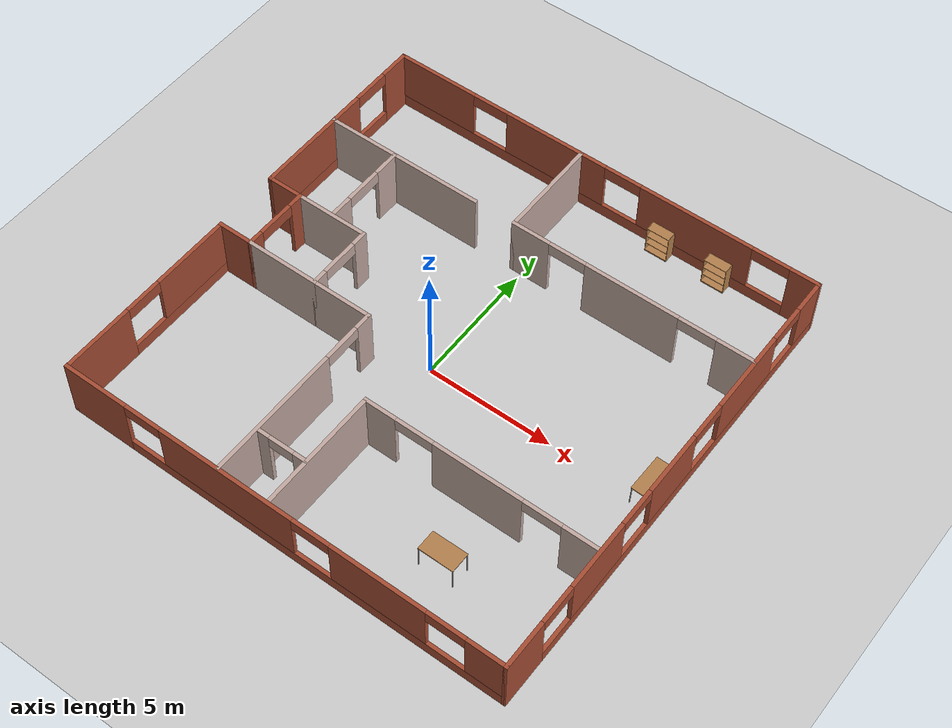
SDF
<sdf version="1.6">
 <world name="default">
  <light name="sun" type="directional">
   <pose>0 0 10 0 -0 0</pose>
   <diffuse>0.8 0.8 0.8 1</diffuse>
   <specular>0.2 0.2 0.2 1</specular>
   <attenuation>
    <range>1000</range>
    <constant>0.9</constant>
    <linear>0.01</linear>
    <quadratic>0.001</quadratic>
   </attenuation>
   <direction>-0.5 0.1 -0.9</direction>
  </light>
  <model name="ground_plane">
   <static>1</static>
   <link name="link">
    <collision name="collision">
     <geometry><plane><normal>0 0 1</normal><size>100 100</size></plane></geometry>
     <surface><friction><ode><mu>100</mu><mu2>50</mu2></ode></friction></surface>
    </collision>
    <visual name="visual">
     <cast_shadows>0</cast_shadows>
     <geometry><plane><normal>0 0 1</normal><size>100 100</size></plane></geometry>
     <material>
      <script><uri>file://media/materials/scripts/gazebo.material</uri><name>Gazebo/Grey</name></script>
     </material>
    </visual>
   </link>
  </model>
  <gravity>0 0 -9.8</gravity>
  <magnetic_field>6e-06 2.3e-05 -4.2e-05</magnetic_field>
  <atmosphere type="adiabatic"/>
  <physics name="default_physics" default="0" type="ode">
   <max_step_size>0.001</max_step_size>
   <real_time_factor>1</real_time_factor>
   <real_time_update_rate>1000</real_time_update_rate>
  </physics>
  <scene><ambient>0.4 0.4 0.4 1</ambient><background>0.7 0.7 0.7 1</background><shadows>1</shadows></scene>
  <audio><device>default</device></audio>
  <spherical_coordinates>
   <surface_model>EARTH_WGS84</surface_model>
   <latitude_deg>0</latitude_deg>
   <longitude_deg>0</longitude_deg>
   <elevation>0</elevation>
   <heading_deg>0</heading_deg>
  </spherical_coordinates>
  <model name="local_floorplan">
   <pose>0.442289 0.453295 0 0 -0 0</pose>
   <link name="Wall_104">
    <collision name="Wall_104_Collision">
     <geometry><box><size>6.5 0.15 2.5</size></box></geometry>
     <pose>0 0 1.25 0 -0 0</pose>
    </collision>
    <visual name="Wall_104_Visual">
     <pose>0 0 1.25 0 -0 0</pose>
     <geometry><box><size>6.5 0.15 2.5</size></box></geometry>
     <material>
      <script><uri>file://media/materials/scripts/gazebo.material</uri><name>Gazebo/Grey</name></script>
      <ambient>0.760784 0.662745 0.627451 1</ambient>
     </material>
     <meta><layer>0</layer></meta>
    </visual>
    <pose>-5.73 4.845 0 0 -0 0</pose>
   </link>
   <link name="Wall_106">
    <collision name="Wall_106_Collision">
     <geometry><box><size>4.15 0.15 2.5</size></box></geometry>
     <pose>0 0 1.25 0 -0 0</pose>
    </collision>
    <visual name="Wall_106_Visual">
     <pose>0 0 1.25 0 -0 0</pose>
     <geometry><box><size>4.15 0.15 2.5</size></box></geometry>
     <material>
      <script><uri>file://media/materials/scripts/gazebo.material</uri><name>Gazebo/Grey</name></script>
      <ambient>0.760784 0.662745 0.627451 1</ambient>
     </material>
     <meta><layer>0</layer></meta>
    </visual>
    <pose>-0.865 6.875 0 0 -0 1.5708</pose>
   </link>
   <link name="Wall_108">
    <pose>-6.125 3.15 0 0 -0 -1.5708</pose>
    <visual name="Wall_108_Visual_0">
     <pose>-1.1925 0 1.25 0 -0 0</pose>
     <geometry><box><size>1.115 0.15 2.5</size></box></geometry>
     <material>
      <script><uri>file://media/materials/scripts/gazebo.material</uri><name>Gazebo/Grey</name></script>
      <ambient>0.760784 0.662745 0.627451 1</ambient>
     </material>
     <meta><layer>0</layer></meta>
    </visual>
    <collision name="Wall_108_Collision_0">
     <geometry><box><size>1.115 0.15 2.5</size></box></geometry>
     <pose>-1.1925 0 1.25 0 -0 0</pose>
    </collision>
    <visual name="Wall_108_Visual_1">
     <pose>1.3075 0 1.25 0 -0 0</pose>
     <geometry><box><size>0.885 0.15 2.5</size></box></geometry>
     <material>
      <script><uri>file://media/materials/scripts/gazebo.material</uri><name>Gazebo/Grey</name></script>
      <ambient>0.760784 0.662745 0.627451 1</ambient>
     </material>
     <meta><layer>0</layer></meta>
    </visual>
    <collision name="Wall_108_Collision_1">
     <geometry><box><size>0.885 0.15 2.5</size></box></geometry>
     <pose>1.3075 0 1.25 0 -0 0</pose>
    </collision>
    <visual name="Wall_108_Visual_2">
     <pose>0.115 0 2.25 0 -0 0</pose>
     <geometry><box><size>1.5 0.15 0.5</size></box></geometry>
     <material>
      <script><uri>file://media/materials/scripts/gazebo.material</uri><name>Gazebo/Grey</name></script>
      <ambient>0.760784 0.662745 0.627451 1</ambient>
     </material>
     <meta><layer>0</layer></meta>
    </visual>
    <collision name="Wall_108_Collision_2">
     <geometry><box><size>1.5 0.15 0.5</size></box></geometry>
     <pose>0.115 0 2.25 0 -0 0</pose>
    </collision>
   </link>
   <link name="Wall_110">
    <pose>4.01 4.875 0 0 -0 0</pose>
    <visual name="Wall_110_Visual_0">
     <pose>-4.1575 0 1.25 0 -0 0</pose>
     <geometry><box><size>1.585 0.15 2.5</size></box></geometry>
     <material>
      <script><uri>file://media/materials/scripts/gazebo.material</uri><name>Gazebo/Grey</name></script>
      <ambient>0.760784 0.662745 0.627451 1</ambient>
     </material>
     <meta><layer>0</layer></meta>
    </visual>
    <collision name="Wall_110_Collision_0">
     <geometry><box><size>1.585 0.15 2.5</size></box></geometry>
     <pose>-4.1575 0 1.25 0 -0 0</pose>
    </collision>
    <visual name="Wall_110_Visual_1">
     <pose>0.025 0 1.25 0 -0 0</pose>
     <geometry><box><size>3.78 0.15 2.5</size></box></geometry>
     <material>
      <script><uri>file://media/materials/scripts/gazebo.material</uri><name>Gazebo/Grey</name></script>
      <ambient>0.760784 0.662745 0.627451 1</ambient>
     </material>
     <meta><layer>0</layer></meta>
    </visual>
    <collision name="Wall_110_Collision_1">
     <geometry><box><size>3.78 0.15 2.5</size></box></geometry>
     <pose>0.025 0 1.25 0 -0 0</pose>
    </collision>
    <visual name="Wall_110_Visual_2">
     <pose>4.1825 0 1.25 0 -0 0</pose>
     <geometry><box><size>1.535 0.15 2.5</size></box></geometry>
     <material>
      <script><uri>file://media/materials/scripts/gazebo.material</uri><name>Gazebo/Grey</name></script>
      <ambient>0.760784 0.662745 0.627451 1</ambient>
     </material>
     <meta><layer>0</layer></meta>
    </visual>
    <collision name="Wall_110_Collision_2">
     <geometry><box><size>1.535 0.15 2.5</size></box></geometry>
     <pose>4.1825 0 1.25 0 -0 0</pose>
    </collision>
    <visual name="Wall_110_Visual_3">
     <pose>-2.615 0 2.25 0 -0 0</pose>
     <geometry><box><size>1.5 0.15 0.5</size></box></geometry>
     <material>
      <script><uri>file://media/materials/scripts/gazebo.material</uri><name>Gazebo/Grey</name></script>
      <ambient>0.760784 0.662745 0.627451 1</ambient>
     </material>
     <meta><layer>0</layer></meta>
    </visual>
    <collision name="Wall_110_Collision_3">
     <geometry><box><size>1.5 0.15 0.5</size></box></geometry>
     <pose>-2.615 0 2.25 0 -0 0</pose>
    </collision>
    <visual name="Wall_110_Visual_4">
     <pose>2.665 0 2.25 0 -0 0</pose>
     <geometry><box><size>1.5 0.15 0.5</size></box></geometry>
     <material>
      <script><uri>file://media/materials/scripts/gazebo.material</uri><name>Gazebo/Grey</name></script>
      <ambient>0.760784 0.662745 0.627451 1</ambient>
     </material>
     <meta><layer>0</layer></meta>
    </visual>
    <collision name="Wall_110_Collision_4">
     <geometry><box><size>1.5 0.15 0.5</size></box></geometry>
     <pose>2.665 0 2.25 0 -0 0</pose>
    </collision>
   </link>
   <link name="Wall_69">
    <pose>-0 -8.925 0 0 -0 0</pose>
    <visual name="Wall_69_Visual_0">
     <pose>-7.6625 0 1.25 0 -0 0</pose>
     <geometry><box><size>2.675 0.15 2.5</size></box></geometry>
     <material>
      <script><uri>file://media/materials/scripts/gazebo.material</uri><name>Gazebo/Bricks</name></script>
      <ambient>1 1 1 1</ambient>
     </material>
     <meta><layer>0</layer></meta>
    </visual>
    <collision name="Wall_69_Collision_0">
     <geometry><box><size>2.675 0.15 2.5</size></box></geometry>
     <pose>-7.6625 0 1.25 0 -0 0</pose>
    </collision>
    <visual name="Wall_69_Visual_1">
     <pose>1.3375 0 0.25 0 -0 0</pose>
     <geometry><box><size>15.325 0.15 0.5</size></box></geometry>
     <material>
      <script><uri>file://media/materials/scripts/gazebo.material</uri><name>Gazebo/Bricks</name></script>
      <ambient>1 1 1 1</ambient>
     </material>
     <meta><layer>0</layer></meta>
    </visual>
    <collision name="Wall_69_Collision_1">
     <geometry><box><size>15.325 0.15 0.5</size></box></geometry>
     <pose>1.3375 0 0.25 0 -0 0</pose>
    </collision>
    <visual name="Wall_69_Visual_2">
     <pose>-2.065 0 1.5 0 -0 0</pose>
     <geometry><box><size>5.52 0.15 2</size></box></geometry>
     <material>
      <script><uri>file://media/materials/scripts/gazebo.material</uri><name>Gazebo/Bricks</name></script>
      <ambient>1 1 1 1</ambient>
     </material>
     <meta><layer>0</layer></meta>
    </visual>
    <collision name="Wall_69_Collision_2">
     <geometry><box><size>5.52 0.15 2</size></box></geometry>
     <pose>-2.065 0 1.5 0 -0 0</pose>
    </collision>
    <visual name="Wall_69_Visual_3">
     <pose>4.07 0 1.5 0 -0 0</pose>
     <geometry><box><size>3.75 0.15 2</size></box></geometry>
     <material>
      <script><uri>file://media/materials/scripts/gazebo.material</uri><name>Gazebo/Bricks</name></script>
      <ambient>1 1 1 1</ambient>
     </material>
     <meta><layer>0</layer></meta>
    </visual>
    <collision name="Wall_69_Collision_3">
     <geometry><box><size>3.75 0.15 2</size></box></geometry>
     <pose>4.07 0 1.5 0 -0 0</pose>
    </collision>
    <visual name="Wall_69_Visual_4">
     <pose>8.2225 0 1.5 0 -0 0</pose>
     <geometry><box><size>1.555 0.15 2</size></box></geometry>
     <material>
      <script><uri>file://media/materials/scripts/gazebo.material</uri><name>Gazebo/Bricks</name></script>
      <ambient>1 1 1 1</ambient>
     </material>
     <meta><layer>0</layer></meta>
    </visual>
    <collision name="Wall_69_Collision_4">
     <geometry><box><size>1.555 0.15 2</size></box></geometry>
     <pose>8.2225 0 1.5 0 -0 0</pose>
    </collision>
    <visual name="Wall_69_Visual_5">
     <pose>-5.575 0 2.25 0 -0 0</pose>
     <geometry><box><size>1.5 0.15 0.5</size></box></geometry>
     <material>
      <script><uri>file://media/materials/scripts/gazebo.material</uri><name>Gazebo/Bricks</name></script>
      <ambient>1 1 1 1</ambient>
     </material>
     <meta><layer>0</layer></meta>
    </visual>
    <collision name="Wall_69_Collision_5">
     <geometry><box><size>1.5 0.15 0.5</size></box></geometry>
     <pose>-5.575 0 2.25 0 -0 0</pose>
    </collision>
    <visual name="Wall_69_Visual_6">
     <pose>1.445 0 2.25 0 -0 0</pose>
     <geometry><box><size>1.5 0.15 0.5</size></box></geometry>
     <material>
      <script><uri>file://media/materials/scripts/gazebo.material</uri><name>Gazebo/Bricks</name></script>
      <ambient>1 1 1 1</ambient>
     </material>
     <meta><layer>0</layer></meta>
    </visual>
    <collision name="Wall_69_Collision_6">
     <geometry><box><size>1.5 0.15 0.5</size></box></geometry>
     <pose>1.445 0 2.25 0 -0 0</pose>
    </collision>
    <visual name="Wall_69_Visual_7">
     <pose>6.695 0 2.25 0 -0 0</pose>
     <geometry><box><size>1.5 0.15 0.5</size></box></geometry>
     <material>
      <script><uri>file://media/materials/scripts/gazebo.material</uri><name>Gazebo/Bricks</name></script>
      <ambient>1 1 1 1</ambient>
     </material>
     <meta><layer>0</layer></meta>
    </visual>
    <collision name="Wall_69_Collision_7">
     <geometry><box><size>1.5 0.15 0.5</size></box></geometry>
     <pose>6.695 0 2.25 0 -0 0</pose>
    </collision>
   </link>
   <link name="Wall_71">
    <pose>8.925 0 0 0 -0 1.5708</pose>
    <visual name="Wall_71_Visual_0">
     <pose>-8.0475 0 1.25 0 -0 0</pose>
     <geometry><box><size>1.905 0.15 2.5</size></box></geometry>
     <material>
      <script><uri>file://media/materials/scripts/gazebo.material</uri><name>Gazebo/Bricks</name></script>
      <ambient>1 1 1 1</ambient>
     </material>
     <meta><layer>0</layer></meta>
    </visual>
    <collision name="Wall_71_Collision_0">
     <geometry><box><size>1.905 0.15 2.5</size></box></geometry>
     <pose>-8.0475 0 1.25 0 -0 0</pose>
    </collision>
    <visual name="Wall_71_Visual_1">
     <pose>0.9525 0 0.25 0 -0 0</pose>
     <geometry><box><size>16.095 0.15 0.5</size></box></geometry>
     <material>
      <script><uri>file://media/materials/scripts/gazebo.material</uri><name>Gazebo/Bricks</name></script>
      <ambient>1 1 1 1</ambient>
     </material>
     <meta><layer>0</layer></meta>
    </visual>
    <collision name="Wall_71_Collision_1">
     <geometry><box><size>16.095 0.15 0.5</size></box></geometry>
     <pose>0.9525 0 0.25 0 -0 0</pose>
    </collision>
    <visual name="Wall_71_Visual_2">
     <pose>-4.21 0 1.5 0 -0 0</pose>
     <geometry><box><size>2.77 0.15 2</size></box></geometry>
     <material>
      <script><uri>file://media/materials/scripts/gazebo.material</uri><name>Gazebo/Bricks</name></script>
      <ambient>1 1 1 1</ambient>
     </material>
     <meta><layer>0</layer></meta>
    </visual>
    <collision name="Wall_71_Collision_2">
     <geometry><box><size>2.77 0.15 2</size></box></geometry>
     <pose>-4.21 0 1.5 0 -0 0</pose>
    </collision>
    <visual name="Wall_71_Visual_3">
     <pose>-0.055 0 1.5 0 -0 0</pose>
     <geometry><box><size>2.54 0.15 2</size></box></geometry>
     <material>
      <script><uri>file://media/materials/scripts/gazebo.material</uri><name>Gazebo/Bricks</name></script>
      <ambient>1 1 1 1</ambient>
     </material>
     <meta><layer>0</layer></meta>
    </visual>
    <collision name="Wall_71_Collision_3">
     <geometry><box><size>2.54 0.15 2</size></box></geometry>
     <pose>-0.055 0 1.5 0 -0 0</pose>
    </collision>
    <visual name="Wall_71_Visual_4">
     <pose>4.405 0 1.5 0 -0 0</pose>
     <geometry><box><size>3.38 0.15 2</size></box></geometry>
     <material>
      <script><uri>file://media/materials/scripts/gazebo.material</uri><name>Gazebo/Bricks</name></script>
      <ambient>1 1 1 1</ambient>
     </material>
     <meta><layer>0</layer></meta>
    </visual>
    <collision name="Wall_71_Collision_4">
     <geometry><box><size>3.38 0.15 2</size></box></geometry>
     <pose>4.405 0 1.5 0 -0 0</pose>
    </collision>
    <visual name="Wall_71_Visual_5">
     <pose>8.2975 0 1.5 0 -0 0</pose>
     <geometry><box><size>1.405 0.15 2</size></box></geometry>
     <material>
      <script><uri>file://media/materials/scripts/gazebo.material</uri><name>Gazebo/Bricks</name></script>
      <ambient>1 1 1 1</ambient>
     </material>
     <meta><layer>0</layer></meta>
    </visual>
    <collision name="Wall_71_Collision_5">
     <geometry><box><size>1.405 0.15 2</size></box></geometry>
     <pose>8.2975 0 1.5 0 -0 0</pose>
    </collision>
    <visual name="Wall_71_Visual_6">
     <pose>-6.345 0 2.25 0 -0 0</pose>
     <geometry><box><size>1.5 0.15 0.5</size></box></geometry>
     <material>
      <script><uri>file://media/materials/scripts/gazebo.material</uri><name>Gazebo/Bricks</name></script>
      <ambient>1 1 1 1</ambient>
     </material>
     <meta><layer>0</layer></meta>
    </visual>
    <collision name="Wall_71_Collision_6">
     <geometry><box><size>1.5 0.15 0.5</size></box></geometry>
     <pose>-6.345 0 2.25 0 -0 0</pose>
    </collision>
    <visual name="Wall_71_Visual_7">
     <pose>-2.075 0 2.25 0 -0 0</pose>
     <geometry><box><size>1.5 0.15 0.5</size></box></geometry>
     <material>
      <script><uri>file://media/materials/scripts/gazebo.material</uri><name>Gazebo/Bricks</name></script>
      <ambient>1 1 1 1</ambient>
     </material>
     <meta><layer>0</layer></meta>
    </visual>
    <collision name="Wall_71_Collision_7">
     <geometry><box><size>1.5 0.15 0.5</size></box></geometry>
     <pose>-2.075 0 2.25 0 -0 0</pose>
    </collision>
    <visual name="Wall_71_Visual_8">
     <pose>1.965 0 2.25 0 -0 0</pose>
     <geometry><box><size>1.5 0.15 0.5</size></box></geometry>
     <material>
      <script><uri>file://media/materials/scripts/gazebo.material</uri><name>Gazebo/Bricks</name></script>
      <ambient>1 1 1 1</ambient>
     </material>
     <meta><layer>0</layer></meta>
    </visual>
    <collision name="Wall_71_Collision_8">
     <geometry><box><size>1.5 0.15 0.5</size></box></geometry>
     <pose>1.965 0 2.25 0 -0 0</pose>
    </collision>
    <visual name="Wall_71_Visual_9">
     <pose>6.845 0 2.25 0 -0 0</pose>
     <geometry><box><size>1.5 0.15 0.5</size></box></geometry>
     <material>
      <script><uri>file://media/materials/scripts/gazebo.material</uri><name>Gazebo/Bricks</name></script>
      <ambient>1 1 1 1</ambient>
     </material>
     <meta><layer>0</layer></meta>
    </visual>
    <collision name="Wall_71_Collision_9">
     <geometry><box><size>1.5 0.15 0.5</size></box></geometry>
     <pose>6.845 0 2.25 0 -0 0</pose>
    </collision>
   </link>
   <link name="Wall_73">
    <pose>-0 8.925 0 0 -0 3.14159</pose>
    <visual name="Wall_73_Visual_0">
     <pose>-8.4075 0 1.25 0 -0 0</pose>
     <geometry><box><size>1.185 0.15 2.5</size></box></geometry>
     <material>
      <script><uri>file://media/materials/scripts/gazebo.material</uri><name>Gazebo/Bricks</name></script>
      <ambient>1 1 1 1</ambient>
     </material>
     <meta><layer>0</layer></meta>
    </visual>
    <collision name="Wall_73_Collision_0">
     <geometry><box><size>1.185 0.15 2.5</size></box></geometry>
     <pose>-8.4075 0 1.25 0 -0 0</pose>
    </collision>
    <visual name="Wall_73_Visual_1">
     <pose>0.5925 0 0.25 0 -0 0</pose>
     <geometry><box><size>16.815 0.15 0.5</size></box></geometry>
     <material>
      <script><uri>file://media/materials/scripts/gazebo.material</uri><name>Gazebo/Bricks</name></script>
      <ambient>1 1 1 1</ambient>
     </material>
     <meta><layer>0</layer></meta>
    </visual>
    <collision name="Wall_73_Collision_1">
     <geometry><box><size>16.815 0.15 0.5</size></box></geometry>
     <pose>0.5925 0 0.25 0 -0 0</pose>
    </collision>
    <visual name="Wall_73_Visual_2">
     <pose>-4.01 0 1.5 0 -0 0</pose>
     <geometry><box><size>4.61 0.15 2</size></box></geometry>
     <material>
      <script><uri>file://media/materials/scripts/gazebo.material</uri><name>Gazebo/Bricks</name></script>
      <ambient>1 1 1 1</ambient>
     </material>
     <meta><layer>0</layer></meta>
    </visual>
    <collision name="Wall_73_Collision_2">
     <geometry><box><size>4.61 0.15 2</size></box></geometry>
     <pose>-4.01 0 1.5 0 -0 0</pose>
    </collision>
    <visual name="Wall_73_Visual_3">
     <pose>1.95 0 1.5 0 -0 0</pose>
     <geometry><box><size>4.31 0.15 2</size></box></geometry>
     <material>
      <script><uri>file://media/materials/scripts/gazebo.material</uri><name>Gazebo/Bricks</name></script>
      <ambient>1 1 1 1</ambient>
     </material>
     <meta><layer>0</layer></meta>
    </visual>
    <collision name="Wall_73_Collision_3">
     <geometry><box><size>4.31 0.15 2</size></box></geometry>
     <pose>1.95 0 1.5 0 -0 0</pose>
    </collision>
    <visual name="Wall_73_Visual_4">
     <pose>7.3025 0 1.5 0 -0 0</pose>
     <geometry><box><size>3.395 0.15 2</size></box></geometry>
     <material>
      <script><uri>file://media/materials/scripts/gazebo.material</uri><name>Gazebo/Bricks</name></script>
      <ambient>1 1 1 1</ambient>
     </material>
     <meta><layer>0</layer></meta>
    </visual>
    <collision name="Wall_73_Collision_4">
     <geometry><box><size>3.395 0.15 2</size></box></geometry>
     <pose>7.3025 0 1.5 0 -0 0</pose>
    </collision>
    <visual name="Wall_73_Visual_5">
     <pose>-7.065 0 2.25 0 -0 0</pose>
     <geometry><box><size>1.5 0.15 0.5</size></box></geometry>
     <material>
      <script><uri>file://media/materials/scripts/gazebo.material</uri><name>Gazebo/Bricks</name></script>
      <ambient>1 1 1 1</ambient>
     </material>
     <meta><layer>0</layer></meta>
    </visual>
    <collision name="Wall_73_Collision_5">
     <geometry><box><size>1.5 0.15 0.5</size></box></geometry>
     <pose>-7.065 0 2.25 0 -0 0</pose>
    </collision>
    <visual name="Wall_73_Visual_6">
     <pose>-0.955 0 2.25 0 -0 0</pose>
     <geometry><box><size>1.5 0.15 0.5</size></box></geometry>
     <material>
      <script><uri>file://media/materials/scripts/gazebo.material</uri><name>Gazebo/Bricks</name></script>
      <ambient>1 1 1 1</ambient>
     </material>
     <meta><layer>0</layer></meta>
    </visual>
    <collision name="Wall_73_Collision_6">
     <geometry><box><size>1.5 0.15 0.5</size></box></geometry>
     <pose>-0.955 0 2.25 0 -0 0</pose>
    </collision>
    <visual name="Wall_73_Visual_7">
     <pose>4.855 0 2.25 0 -0 0</pose>
     <geometry><box><size>1.5 0.15 0.5</size></box></geometry>
     <material>
      <script><uri>file://media/materials/scripts/gazebo.material</uri><name>Gazebo/Bricks</name></script>
      <ambient>1 1 1 1</ambient>
     </material>
     <meta><layer>0</layer></meta>
    </visual>
    <collision name="Wall_73_Collision_7">
     <geometry><box><size>1.5 0.15 0.5</size></box></geometry>
     <pose>4.855 0 2.25 0 -0 0</pose>
    </collision>
   </link>
   <link name="Wall_75">
    <pose>-8.925 5.125 0 0 -0 -1.5708</pose>
    <visual name="Wall_75_Visual_0">
     <pose>-3.2275 0 1.25 0 -0 0</pose>
     <geometry><box><size>1.295 0.15 2.5</size></box></geometry>
     <material>
      <script><uri>file://media/materials/scripts/gazebo.material</uri><name>Gazebo/Bricks</name></script>
      <ambient>1 1 1 1</ambient>
     </material>
     <meta><layer>0</layer></meta>
    </visual>
    <collision name="Wall_75_Collision_0">
     <geometry><box><size>1.295 0.15 2.5</size></box></geometry>
     <pose>-3.2275 0 1.25 0 -0 0</pose>
    </collision>
    <visual name="Wall_75_Visual_1">
     <pose>0.6475 0 0.25 0 -0 0</pose>
     <geometry><box><size>6.455 0.15 0.5</size></box></geometry>
     <material>
      <script><uri>file://media/materials/scripts/gazebo.material</uri><name>Gazebo/Bricks</name></script>
      <ambient>1 1 1 1</ambient>
     </material>
     <meta><layer>0</layer></meta>
    </visual>
    <collision name="Wall_75_Collision_1">
     <geometry><box><size>6.455 0.15 0.5</size></box></geometry>
     <pose>0.6475 0 0.25 0 -0 0</pose>
    </collision>
    <visual name="Wall_75_Visual_2">
     <pose>1.3975 0 1.5 0 -0 0</pose>
     <geometry><box><size>4.955 0.15 2</size></box></geometry>
     <material>
      <script><uri>file://media/materials/scripts/gazebo.material</uri><name>Gazebo/Bricks</name></script>
      <ambient>1 1 1 1</ambient>
     </material>
     <meta><layer>0</layer></meta>
    </visual>
    <collision name="Wall_75_Collision_2">
     <geometry><box><size>4.955 0.15 2</size></box></geometry>
     <pose>1.3975 0 1.5 0 -0 0</pose>
    </collision>
    <visual name="Wall_75_Visual_3">
     <pose>-1.83 0 2.25 0 -0 0</pose>
     <geometry><box><size>1.5 0.15 0.5</size></box></geometry>
     <material>
      <script><uri>file://media/materials/scripts/gazebo.material</uri><name>Gazebo/Bricks</name></script>
      <ambient>1 1 1 1</ambient>
     </material>
     <meta><layer>0</layer></meta>
    </visual>
    <collision name="Wall_75_Collision_3">
     <geometry><box><size>1.5 0.15 0.5</size></box></geometry>
     <pose>-1.83 0 2.25 0 -0 0</pose>
    </collision>
   </link>
   <link name="Wall_77">
    <pose>-8.925 -5.125 0 0 -0 1.5708</pose>
    <visual name="Wall_77_Visual_0">
     <pose>-2.3925 0 1.25 0 -0 0</pose>
     <geometry><box><size>2.965 0.15 2.5</size></box></geometry>
     <material>
      <script><uri>file://media/materials/scripts/gazebo.material</uri><name>Gazebo/Bricks</name></script>
      <ambient>1 1 1 1</ambient>
     </material>
     <meta><layer>0</layer></meta>
    </visual>
    <collision name="Wall_77_Collision_0">
     <geometry><box><size>2.965 0.15 2.5</size></box></geometry>
     <pose>-2.3925 0 1.25 0 -0 0</pose>
    </collision>
    <visual name="Wall_77_Visual_1">
     <pose>1.4825 0 0.25 0 -0 0</pose>
     <geometry><box><size>4.785 0.15 0.5</size></box></geometry>
     <material>
      <script><uri>file://media/materials/scripts/gazebo.material</uri><name>Gazebo/Bricks</name></script>
      <ambient>1 1 1 1</ambient>
     </material>
     <meta><layer>0</layer></meta>
    </visual>
    <collision name="Wall_77_Collision_1">
     <geometry><box><size>4.785 0.15 0.5</size></box></geometry>
     <pose>1.4825 0 0.25 0 -0 0</pose>
    </collision>
    <visual name="Wall_77_Visual_2">
     <pose>2.2325 0 1.5 0 -0 0</pose>
     <geometry><box><size>3.285 0.15 2</size></box></geometry>
     <material>
      <script><uri>file://media/materials/scripts/gazebo.material</uri><name>Gazebo/Bricks</name></script>
      <ambient>1 1 1 1</ambient>
     </material>
     <meta><layer>0</layer></meta>
    </visual>
    <collision name="Wall_77_Collision_2">
     <geometry><box><size>3.285 0.15 2</size></box></geometry>
     <pose>2.2325 0 1.5 0 -0 0</pose>
    </collision>
    <visual name="Wall_77_Visual_3">
     <pose>-0.16 0 2.25 0 -0 0</pose>
     <geometry><box><size>1.5 0.15 0.5</size></box></geometry>
     <material>
      <script><uri>file://media/materials/scripts/gazebo.material</uri><name>Gazebo/Bricks</name></script>
      <ambient>1 1 1 1</ambient>
     </material>
     <meta><layer>0</layer></meta>
    </visual>
    <collision name="Wall_77_Collision_3">
     <geometry><box><size>1.5 0.15 0.5</size></box></geometry>
     <pose>-0.16 0 2.25 0 -0 0</pose>
    </collision>
   </link>
   <link name="Wall_79">
    <collision name="Wall_79_Collision">
     <geometry><box><size>1.5 0.15 2.5</size></box></geometry>
     <pose>0 0 1.25 0 -0 0</pose>
    </collision>
    <visual name="Wall_79_Visual">
     <pose>0 0 1.25 0 -0 0</pose>
     <geometry><box><size>1.5 0.15 2.5</size></box></geometry>
     <material>
      <script><uri>file://media/materials/scripts/gazebo.material</uri><name>Gazebo/Bricks</name></script>
      <ambient>1 1 1 1</ambient>
     </material>
     <meta><layer>0</layer></meta>
    </visual>
    <pose>-8.25 -1.325 0 0 -0 0</pose>
   </link>
   <link name="Wall_81">
    <collision name="Wall_81_Collision">
     <geometry><box><size>1.5 0.15 2.5</size></box></geometry>
     <pose>0 0 1.25 0 -0 0</pose>
    </collision>
    <visual name="Wall_81_Visual">
     <pose>0 0 1.25 0 -0 0</pose>
     <geometry><box><size>1.5 0.15 2.5</size></box></geometry>
     <material>
      <script><uri>file://media/materials/scripts/gazebo.material</uri><name>Gazebo/Bricks</name></script>
      <ambient>1 1 1 1</ambient>
     </material>
     <meta><layer>0</layer></meta>
    </visual>
    <pose>-8.25 1.325 0 0 -0 0</pose>
   </link>
   <link name="Wall_83">
    <pose>-7.575 0 0 0 -0 -1.5708</pose>
    <visual name="Wall_83_Visual_0">
     <pose>-1.0725 0 1.25 0 -0 0</pose>
     <geometry><box><size>0.655 0.15 2.5</size></box></geometry>
     <material>
      <script><uri>file://media/materials/scripts/gazebo.material</uri><name>Gazebo/Bricks</name></script>
      <ambient>1 1 1 1</ambient>
     </material>
     <meta><layer>0</layer></meta>
    </visual>
    <collision name="Wall_83_Collision_0">
     <geometry><box><size>0.655 0.15 2.5</size></box></geometry>
     <pose>-1.0725 0 1.25 0 -0 0</pose>
    </collision>
    <visual name="Wall_83_Visual_1">
     <pose>1.0775 0 1.25 0 -0 0</pose>
     <geometry><box><size>0.645 0.15 2.5</size></box></geometry>
     <material>
      <script><uri>file://media/materials/scripts/gazebo.material</uri><name>Gazebo/Bricks</name></script>
      <ambient>1 1 1 1</ambient>
     </material>
     <meta><layer>0</layer></meta>
    </visual>
    <collision name="Wall_83_Collision_1">
     <geometry><box><size>0.645 0.15 2.5</size></box></geometry>
     <pose>1.0775 0 1.25 0 -0 0</pose>
    </collision>
    <visual name="Wall_83_Visual_2">
     <pose>0.005 0 2.25 0 -0 0</pose>
     <geometry><box><size>1.5 0.15 0.5</size></box></geometry>
     <material>
      <script><uri>file://media/materials/scripts/gazebo.material</uri><name>Gazebo/Bricks</name></script>
      <ambient>1 1 1 1</ambient>
     </material>
     <meta><layer>0</layer></meta>
    </visual>
    <collision name="Wall_83_Collision_2">
     <geometry><box><size>1.5 0.15 0.5</size></box></geometry>
     <pose>0.005 0 2.25 0 -0 0</pose>
    </collision>
   </link>
   <link name="Wall_85">
    <collision name="Wall_85_Collision">
     <geometry><box><size>3 0.15 2.5</size></box></geometry>
     <pose>0 0 1.25 0 -0 0</pose>
    </collision>
    <visual name="Wall_85_Visual">
     <pose>0 0 1.25 0 -0 0</pose>
     <geometry><box><size>3 0.15 2.5</size></box></geometry>
     <material>
      <script><uri>file://media/materials/scripts/gazebo.material</uri><name>Gazebo/Grey</name></script>
      <ambient>0.760784 0.662745 0.627451 1</ambient>
     </material>
     <meta><layer>0</layer></meta>
    </visual>
    <pose>-6.15 -1.325 0 0 -0 0</pose>
   </link>
   <link name="Wall_87">
    <collision name="Wall_87_Collision">
     <geometry><box><size>3 0.15 2.5</size></box></geometry>
     <pose>0 0 1.25 0 -0 0</pose>
    </collision>
    <visual name="Wall_87_Visual">
     <pose>0 0 1.25 0 -0 0</pose>
     <geometry><box><size>3 0.15 2.5</size></box></geometry>
     <material>
      <script><uri>file://media/materials/scripts/gazebo.material</uri><name>Gazebo/Grey</name></script>
      <ambient>0.760784 0.662745 0.627451 1</ambient>
     </material>
     <meta><layer>0</layer></meta>
    </visual>
    <pose>-6.15 1.325 0 0 -0 0</pose>
   </link>
   <link name="Wall_88">
    <pose>-4.725 0 0 0 -0 -1.5708</pose>
    <visual name="Wall_88_Visual_0">
     <pose>-1.0775 0 1.25 0 -0 0</pose>
     <geometry><box><size>0.645 0.15 2.5</size></box></geometry>
     <material>
      <script><uri>file://media/materials/scripts/gazebo.material</uri><name>Gazebo/Grey</name></script>
      <ambient>0.760784 0.662745 0.627451 1</ambient>
     </material>
     <meta><layer>0</layer></meta>
    </visual>
    <collision name="Wall_88_Collision_0">
     <geometry><box><size>0.645 0.15 2.5</size></box></geometry>
     <pose>-1.0775 0 1.25 0 -0 0</pose>
    </collision>
    <visual name="Wall_88_Visual_1">
     <pose>1.0725 0 1.25 0 -0 0</pose>
     <geometry><box><size>0.655 0.15 2.5</size></box></geometry>
     <material>
      <script><uri>file://media/materials/scripts/gazebo.material</uri><name>Gazebo/Grey</name></script>
      <ambient>0.760784 0.662745 0.627451 1</ambient>
     </material>
     <meta><layer>0</layer></meta>
    </visual>
    <collision name="Wall_88_Collision_1">
     <geometry><box><size>0.655 0.15 2.5</size></box></geometry>
     <pose>1.0725 0 1.25 0 -0 0</pose>
    </collision>
    <visual name="Wall_88_Visual_2">
     <pose>-0.005 0 2.25 0 -0 0</pose>
     <geometry><box><size>1.5 0.15 0.5</size></box></geometry>
     <material>
      <script><uri>file://media/materials/scripts/gazebo.material</uri><name>Gazebo/Grey</name></script>
      <ambient>0.760784 0.662745 0.627451 1</ambient>
     </material>
     <meta><layer>0</layer></meta>
    </visual>
    <collision name="Wall_88_Collision_2">
     <geometry><box><size>1.5 0.15 0.5</size></box></geometry>
     <pose>-0.005 0 2.25 0 -0 0</pose>
    </collision>
   </link>
   <link name="Wall_90">
    <collision name="Wall_90_Collision">
     <geometry><box><size>2.5 0.15 2.5</size></box></geometry>
     <pose>0 0 1.25 0 -0 0</pose>
    </collision>
    <visual name="Wall_90_Visual">
     <pose>0 0 1.25 0 -0 0</pose>
     <geometry><box><size>2.5 0.15 2.5</size></box></geometry>
     <material>
      <script><uri>file://media/materials/scripts/gazebo.material</uri><name>Gazebo/Grey</name></script>
      <ambient>0.760784 0.662745 0.627451 1</ambient>
     </material>
     <meta><layer>0</layer></meta>
    </visual>
    <pose>-3.55 -1.325 0 0 -0 0</pose>
   </link>
   <link name="Wall_91">
    <pose>-2.375 -5.1 0 0 -0 -1.5708</pose>
    <visual name="Wall_91_Visual_0">
     <pose>-3.4825 0 1.25 0 -0 0</pose>
     <geometry><box><size>0.734999 0.15 2.5</size></box></geometry>
     <material>
      <script><uri>file://media/materials/scripts/gazebo.material</uri><name>Gazebo/Grey</name></script>
      <ambient>0.760784 0.662745 0.627451 1</ambient>
     </material>
     <meta><layer>0</layer></meta>
    </visual>
    <collision name="Wall_91_Collision_0">
     <geometry><box><size>0.734999 0.15 2.5</size></box></geometry>
     <pose>-3.4825 0 1.25 0 -0 0</pose>
    </collision>
    <visual name="Wall_91_Visual_1">
     <pose>1.1175 0 1.25 0 -0 0</pose>
     <geometry><box><size>5.465 0.15 2.5</size></box></geometry>
     <material>
      <script><uri>file://media/materials/scripts/gazebo.material</uri><name>Gazebo/Grey</name></script>
      <ambient>0.760784 0.662745 0.627451 1</ambient>
     </material>
     <meta><layer>0</layer></meta>
    </visual>
    <collision name="Wall_91_Collision_1">
     <geometry><box><size>5.465 0.15 2.5</size></box></geometry>
     <pose>1.1175 0 1.25 0 -0 0</pose>
    </collision>
    <visual name="Wall_91_Visual_2">
     <pose>-2.365 0 2.25 0 -0 0</pose>
     <geometry><box><size>1.5 0.15 0.5</size></box></geometry>
     <material>
      <script><uri>file://media/materials/scripts/gazebo.material</uri><name>Gazebo/Grey</name></script>
      <ambient>0.760784 0.662745 0.627451 1</ambient>
     </material>
     <meta><layer>0</layer></meta>
    </visual>
    <collision name="Wall_91_Collision_2">
     <geometry><box><size>1.5 0.15 0.5</size></box></geometry>
     <pose>-2.365 0 2.25 0 -0 0</pose>
    </collision>
   </link>
   <link name="Wall_93">
    <collision name="Wall_93_Collision">
     <geometry><box><size>5 0.15 2.5</size></box></geometry>
     <pose>0 0 1.25 0 -0 0</pose>
    </collision>
    <visual name="Wall_93_Visual">
     <pose>0 0 1.25 0 -0 0</pose>
     <geometry><box><size>5 0.15 2.5</size></box></geometry>
     <material>
      <script><uri>file://media/materials/scripts/gazebo.material</uri><name>Gazebo/Grey</name></script>
      <ambient>0.760784 0.662745 0.627451 1</ambient>
     </material>
     <meta><layer>0</layer></meta>
    </visual>
    <pose>-0.315 -6.46 0 0 -0 1.5708</pose>
   </link>
   <link name="Wall_95">
    <pose>4.285 -4.035 0 0 -0 0</pose>
    <visual name="Wall_95_Visual_0">
     <pose>-4.0125 0 1.25 0 -0 0</pose>
     <geometry><box><size>1.325 0.15 2.5</size></box></geometry>
     <material>
      <script><uri>file://media/materials/scripts/gazebo.material</uri><name>Gazebo/Grey</name></script>
      <ambient>0.760784 0.662745 0.627451 1</ambient>
     </material>
     <meta><layer>0</layer></meta>
    </visual>
    <collision name="Wall_95_Collision_0">
     <geometry><box><size>1.325 0.15 2.5</size></box></geometry>
     <pose>-4.0125 0 1.25 0 -0 0</pose>
    </collision>
    <visual name="Wall_95_Visual_1">
     <pose>-0.08 0 1.25 0 -0 0</pose>
     <geometry><box><size>3.54 0.15 2.5</size></box></geometry>
     <material>
      <script><uri>file://media/materials/scripts/gazebo.material</uri><name>Gazebo/Grey</name></script>
      <ambient>0.760784 0.662745 0.627451 1</ambient>
     </material>
     <meta><layer>0</layer></meta>
    </visual>
    <collision name="Wall_95_Collision_1">
     <geometry><box><size>3.54 0.15 2.5</size></box></geometry>
     <pose>-0.08 0 1.25 0 -0 0</pose>
    </collision>
    <visual name="Wall_95_Visual_2">
     <pose>3.9325 0 1.25 0 -0 0</pose>
     <geometry><box><size>1.485 0.15 2.5</size></box></geometry>
     <material>
      <script><uri>file://media/materials/scripts/gazebo.material</uri><name>Gazebo/Grey</name></script>
      <ambient>0.760784 0.662745 0.627451 1</ambient>
     </material>
     <meta><layer>0</layer></meta>
    </visual>
    <collision name="Wall_95_Collision_2">
     <geometry><box><size>1.485 0.15 2.5</size></box></geometry>
     <pose>3.9325 0 1.25 0 -0 0</pose>
    </collision>
    <visual name="Wall_95_Visual_3">
     <pose>-2.6 0 2.25 0 -0 0</pose>
     <geometry><box><size>1.5 0.15 0.5</size></box></geometry>
     <material>
      <script><uri>file://media/materials/scripts/gazebo.material</uri><name>Gazebo/Grey</name></script>
      <ambient>0.760784 0.662745 0.627451 1</ambient>
     </material>
     <meta><layer>0</layer></meta>
    </visual>
    <collision name="Wall_95_Collision_3">
     <geometry><box><size>1.5 0.15 0.5</size></box></geometry>
     <pose>-2.6 0 2.25 0 -0 0</pose>
    </collision>
    <visual name="Wall_95_Visual_4">
     <pose>2.44 0 2.25 0 -0 0</pose>
     <geometry><box><size>1.5 0.15 0.5</size></box></geometry>
     <material>
      <script><uri>file://media/materials/scripts/gazebo.material</uri><name>Gazebo/Grey</name></script>
      <ambient>0.760784 0.662745 0.627451 1</ambient>
     </material>
     <meta><layer>0</layer></meta>
    </visual>
    <collision name="Wall_95_Collision_4">
     <geometry><box><size>1.5 0.15 0.5</size></box></geometry>
     <pose>2.44 0 2.25 0 -0 0</pose>
    </collision>
   </link>
   <link name="Wall_97">
    <pose>-1.34 -7.015 0 0 -0 0</pose>
    <visual name="Wall_97_Visual_0">
     <pose>-0.7775 0 1.25 0 -0 0</pose>
     <geometry><box><size>0.545 0.15 2.5</size></box></geometry>
     <material>
      <script><uri>file://media/materials/scripts/gazebo.material</uri><name>Gazebo/Grey</name></script>
      <ambient>0.760784 0.662745 0.627451 1</ambient>
     </material>
     <meta><layer>0</layer></meta>
    </visual>
    <collision name="Wall_97_Collision_0">
     <geometry><box><size>0.545 0.15 2.5</size></box></geometry>
     <pose>-0.7775 0 1.25 0 -0 0</pose>
    </collision>
    <visual name="Wall_97_Visual_1">
     <pose>0.7725 0 1.25 0 -0 0</pose>
     <geometry><box><size>0.555 0.15 2.5</size></box></geometry>
     <material>
      <script><uri>file://media/materials/scripts/gazebo.material</uri><name>Gazebo/Grey</name></script>
      <ambient>0.760784 0.662745 0.627451 1</ambient>
     </material>
     <meta><layer>0</layer></meta>
    </visual>
    <collision name="Wall_97_Collision_1">
     <geometry><box><size>0.555 0.15 2.5</size></box></geometry>
     <pose>0.7725 0 1.25 0 -0 0</pose>
    </collision>
    <visual name="Wall_97_Visual_2">
     <pose>-0.005 0 2.25 0 -0 0</pose>
     <geometry><box><size>1 0.15 0.5</size></box></geometry>
     <material>
      <script><uri>file://media/materials/scripts/gazebo.material</uri><name>Gazebo/Grey</name></script>
      <ambient>0.760784 0.662745 0.627451 1</ambient>
     </material>
     <meta><layer>0</layer></meta>
    </visual>
    <collision name="Wall_97_Collision_2">
     <geometry><box><size>1 0.15 0.5</size></box></geometry>
     <pose>-0.005 0 2.25 0 -0 0</pose>
    </collision>
   </link>
   <static>1</static>
  </model>
  <model name="bookshelf">
   <static>1</static>
   <link name="link">
    <inertial><mass>1</mass></inertial>
    <collision name="back">
     <pose>0 0.005 0.6 0 -0 0</pose>
     <geometry><box><size>0.9 0.01 1.2</size></box></geometry>
    </collision>
    <visual name="visual1">
     <pose>0 0.005 0.6 0 -0 0</pose>
     <geometry><box><size>0.9 0.01 1.2</size></box></geometry>
     <material>
      <script><uri>file://media/materials/scripts/gazebo.material</uri><name>Gazebo/Wood</name></script>
     </material>
    </visual>
    <collision name="left_side">
     <pose>0.45 -0.195 0.6 0 -0 0</pose>
     <geometry><box><size>0.02 0.4 1.2</size></box></geometry>
    </collision>
    <visual name="visual2">
     <pose>0.45 -0.195 0.6 0 -0 0</pose>
     <geometry><box><size>0.02 0.4 1.2</size></box></geometry>
     <material>
      <script><uri>file://media/materials/scripts/gazebo.material</uri><name>Gazebo/Wood</name></script>
     </material>
    </visual>
    <collision name="right_side">
     <pose>-0.45 -0.195 0.6 0 -0 0</pose>
     <geometry><box><size>0.02 0.4 1.2</size></box></geometry>
    </collision>
    <visual name="visual3">
     <pose>-0.45 -0.195 0.6 0 -0 0</pose>
     <geometry><box><size>0.02 0.4 1.2</size></box></geometry>
     <material>
      <script><uri>file://media/materials/scripts/gazebo.material</uri><name>Gazebo/Wood</name></script>
     </material>
    </visual>
    <collision name="bottom">
     <pose>0 -0.195 0.03 0 -0 0</pose>
     <geometry><box><size>0.88 0.4 0.06</size></box></geometry>
    </collision>
    <visual name="visual4">
     <pose>0 -0.195 0.03 0 -0 0</pose>
     <geometry><box><size>0.88 0.4 0.06</size></box></geometry>
     <material>
      <script><uri>file://media/materials/scripts/gazebo.material</uri><name>Gazebo/Wood</name></script>
     </material>
    </visual>
    <collision name="top">
     <pose>0 -0.195 1.19 0 -0 0</pose>
     <geometry><box><size>0.88 0.4 0.02</size></box></geometry>
    </collision>
    <visual name="visual5">
     <pose>0 -0.195 1.19 0 -0 0</pose>
     <geometry><box><size>0.88 0.4 0.02</size></box></geometry>
     <material>
      <script><uri>file://media/materials/scripts/gazebo.material</uri><name>Gazebo/Wood</name></script>
     </material>
    </visual>
    <collision name="low_shelf">
     <pose>0 -0.195 0.43 0 -0 0</pose>
     <geometry><box><size>0.88 0.4 0.02</size></box></geometry>
    </collision>
    <visual name="visual6">
     <pose>0 -0.195 0.43 0 -0 0</pose>
     <geometry><box><size>0.88 0.4 0.02</size></box></geometry>
     <material>
      <script><uri>file://media/materials/scripts/gazebo.material</uri><name>Gazebo/Wood</name></script>
     </material>
    </visual>
    <collision name="high_shelf">
     <pose>0 -0.195 0.8 0 -0 0</pose>
     <geometry><box><size>0.88 0.4 0.02</size></box></geometry>
    </collision>
    <visual name="visual7">
     <pose>0 -0.195 0.8 0 -0 0</pose>
     <geometry><box><size>0.88 0.4 0.02</size></box></geometry>
     <material>
      <script><uri>file://media/materials/scripts/gazebo.material</uri><name>Gazebo/Wood</name></script>
     </material>
    </visual>
   </link>
   <pose>3.32858 9.2615 0 0 -0 0</pose>
  </model>
  <model name="bookshelf_0">
   <static>1</static>
   <link name="link">
    <inertial><mass>1</mass></inertial>
    <collision name="back">
     <pose>0 0.005 0.6 0 -0 0</pose>
     <geometry><box><size>0.9 0.01 1.2</size></box></geometry>
    </collision>
    <visual name="visual1">
     <pose>0 0.005 0.6 0 -0 0</pose>
     <geometry><box><size>0.9 0.01 1.2</size></box></geometry>
     <material>
      <script><uri>file://media/materials/scripts/gazebo.material</uri><name>Gazebo/Wood</name></script>
     </material>
    </visual>
    <collision name="left_side">
     <pose>0.45 -0.195 0.6 0 -0 0</pose>
     <geometry><box><size>0.02 0.4 1.2</size></box></geometry>
    </collision>
    <visual name="visual2">
     <pose>0.45 -0.195 0.6 0 -0 0</pose>
     <geometry><box><size>0.02 0.4 1.2</size></box></geometry>
     <material>
      <script><uri>file://media/materials/scripts/gazebo.material</uri><name>Gazebo/Wood</name></script>
     </material>
    </visual>
    <collision name="right_side">
     <pose>-0.45 -0.195 0.6 0 -0 0</pose>
     <geometry><box><size>0.02 0.4 1.2</size></box></geometry>
    </collision>
    <visual name="visual3">
     <pose>-0.45 -0.195 0.6 0 -0 0</pose>
     <geometry><box><size>0.02 0.4 1.2</size></box></geometry>
     <material>
      <script><uri>file://media/materials/scripts/gazebo.material</uri><name>Gazebo/Wood</name></script>
     </material>
    </visual>
    <collision name="bottom">
     <pose>0 -0.195 0.03 0 -0 0</pose>
     <geometry><box><size>0.88 0.4 0.06</size></box></geometry>
    </collision>
    <visual name="visual4">
     <pose>0 -0.195 0.03 0 -0 0</pose>
     <geometry><box><size>0.88 0.4 0.06</size></box></geometry>
     <material>
      <script><uri>file://media/materials/scripts/gazebo.material</uri><name>Gazebo/Wood</name></script>
     </material>
    </visual>
    <collision name="top">
     <pose>0 -0.195 1.19 0 -0 0</pose>
     <geometry><box><size>0.88 0.4 0.02</size></box></geometry>
    </collision>
    <visual name="visual5">
     <pose>0 -0.195 1.19 0 -0 0</pose>
     <geometry><box><size>0.88 0.4 0.02</size></box></geometry>
     <material>
      <script><uri>file://media/materials/scripts/gazebo.material</uri><name>Gazebo/Wood</name></script>
     </material>
    </visual>
    <collision name="low_shelf">
     <pose>0 -0.195 0.43 0 -0 0</pose>
     <geometry><box><size>0.88 0.4 0.02</size></box></geometry>
    </collision>
    <visual name="visual6">
     <pose>0 -0.195 0.43 0 -0 0</pose>
     <geometry><box><size>0.88 0.4 0.02</size></box></geometry>
     <material>
      <script><uri>file://media/materials/scripts/gazebo.material</uri><name>Gazebo/Wood</name></script>
     </material>
    </visual>
    <collision name="high_shelf">
     <pose>0 -0.195 0.8 0 -0 0</pose>
     <geometry><box><size>0.88 0.4 0.02</size></box></geometry>
    </collision>
    <visual name="visual7">
     <pose>0 -0.195 0.8 0 -0 0</pose>
     <geometry><box><size>0.88 0.4 0.02</size></box></geometry>
     <material>
      <script><uri>file://media/materials/scripts/gazebo.material</uri><name>Gazebo/Wood</name></script>
     </material>
    </visual>
   </link>
   <pose>5.70972 9.27818 0 0 -0 0</pose>
  </model>
  <model name="table">
   <static>1</static>
   <link name="link">
    <collision name="surface">
     <pose>0 0 1 0 -0 0</pose>
     <geometry><box><size>1.5 0.8 0.03</size></box></geometry>
     <surface><friction><ode><mu>0.6</mu><mu2>0.6</mu2></ode></friction></surface>
    </collision>
    <visual name="visual1">
     <pose>0 0 1 0 -0 0</pose>
     <geometry><box><size>1.5 0.8 0.03</size></box></geometry>
     <material>
      <script><uri>file://media/materials/scripts/gazebo.material</uri><name>Gazebo/Wood</name></script>
     </material>
    </visual>
    <collision name="front_left_leg">
     <pose>0.68 0.38 0.5 0 -0 0</pose>
     <geometry><cylinder><radius>0.02</radius><length>1</length></cylinder></geometry>
    </collision>
    <visual name="front_left_leg">
     <pose>0.68 0.38 0.5 0 -0 0</pose>
     <geometry><cylinder><radius>0.02</radius><length>1</length></cylinder></geometry>
     <material>
      <script><uri>file://media/materials/scripts/gazebo.material</uri><name>Gazebo/Grey</name></script>
     </material>
    </visual>
    <collision name="front_right_leg">
     <pose>0.68 -0.38 0.5 0 -0 0</pose>
     <geometry><cylinder><radius>0.02</radius><length>1</length></cylinder></geometry>
    </collision>
    <visual name="front_right_leg">
     <pose>0.68 -0.38 0.5 0 -0 0</pose>
     <geometry><cylinder><radius>0.02</radius><length>1</length></cylinder></geometry>
     <material>
      <script><uri>file://media/materials/scripts/gazebo.material</uri><name>Gazebo/Grey</name></script>
     </material>
    </visual>
    <collision name="back_right_leg">
     <pose>-0.68 -0.38 0.5 0 -0 0</pose>
     <geometry><cylinder><radius>0.02</radius><length>1</length></cylinder></geometry>
    </collision>
    <visual name="back_right_leg">
     <pose>-0.68 -0.38 0.5 0 -0 0</pose>
     <geometry><cylinder><radius>0.02</radius><length>1</length></cylinder></geometry>
     <material>
      <script><uri>file://media/materials/scripts/gazebo.material</uri><name>Gazebo/Grey</name></script>
     </material>
    </visual>
    <collision name="back_left_leg">
     <pose>-0.68 0.38 0.5 0 -0 0</pose>
     <geometry><cylinder><radius>0.02</radius><length>1</length></cylinder></geometry>
    </collision>
    <visual name="back_left_leg">
     <pose>-0.68 0.38 0.5 0 -0 0</pose>
     <geometry><cylinder><radius>0.02</radius><length>1</length></cylinder></geometry>
     <material>
      <script><uri>file://media/materials/scripts/gazebo.material</uri><name>Gazebo/Grey</name></script>
     </material>
    </visual>
   </link>
   <pose>8.76199 0.431581 -0.045608 0.027935 0.000455 1.55451</pose>
  </model>
  <model name="table_0">
   <static>0</static>
   <link name="link">
    <collision name="surface">
     <pose>0 0 1 0 -0 0</pose>
     <geometry><box><size>1.5 0.8 0.03</size></box></geometry>
     <surface><friction><ode><mu>0.6</mu><mu2>0.6</mu2></ode></friction></surface>
    </collision>
    <visual name="visual1">
     <pose>0 0 1 0 -0 0</pose>
     <geometry><box><size>1.4 0.8 0.04</size></box></geometry>
     <material>
      <script><uri>file://media/materials/scripts/gazebo.material</uri><name>Gazebo/Wood</name></script>
     </material>
    </visual>
    <collision name="front_left_leg">
     <pose>0.68 0.38 0.5 0 -0 0</pose>
     <geometry><cylinder><radius>0.02</radius><length>1</length></cylinder></geometry>
    </collision>
    <visual name="front_left_leg">
     <pose>0.68 0.38 0.5 0 -0 0</pose>
     <geometry><cylinder><radius>0.02</radius><length>1</length></cylinder></geometry>
     <material>
      <script><uri>file://media/materials/scripts/gazebo.material</uri><name>Gazebo/Grey</name></script>
     </material>
    </visual>
    <collision name="front_right_leg">
     <pose>0.68 -0.38 0.5 0 -0 0</pose>
     <geometry><cylinder><radius>0.02</radius><length>1</length></cylinder></geometry>
    </collision>
    <visual name="front_right_leg">
     <pose>0.68 -0.38 0.5 0 -0 0</pose>
     <geometry><cylinder><radius>0.02</radius><length>1</length></cylinder></geometry>
     <material>
      <script><uri>file://media/materials/scripts/gazebo.material</uri><name>Gazebo/Grey</name></script>
     </material>
    </visual>
    <collision name="back_right_leg">
     <pose>-0.68 -0.38 0.5 0 -0 0</pose>
     <geometry><cylinder><radius>0.02</radius><length>1</length></cylinder></geometry>
    </collision>
    <visual name="back_right_leg">
     <pose>-0.68 -0.38 0.5 0 -0 0</pose>
     <geometry><cylinder><radius>0.02</radius><length>1</length></cylinder></geometry>
     <material>
      <script><uri>file://media/materials/scripts/gazebo.material</uri><name>Gazebo/Grey</name></script>
     </material>
    </visual>
    <collision name="back_left_leg">
     <pose>-0.68 0.38 0.5 0 -0 0</pose>
     <geometry><cylinder><radius>0.02</radius><length>1</length></cylinder></geometry>
    </collision>
    <visual name="back_left_leg">
     <pose>-0.68 0.38 0.5 0 -0 0</pose>
     <geometry><cylinder><radius>0.02</radius><length>1</length></cylinder></geometry>
     <material>
      <script><uri>file://media/materials/scripts/gazebo.material</uri><name>Gazebo/Grey</name></script>
     </material>
    </visual>
    <inertial>
     <inertia><ixx>1</ixx><ixy>0</ixy><ixz>0</ixz><iyy>1</iyy><iyz>0</iyz><izz>1</izz></inertia>
     <mass>1</mass>
    </inertial>
   </link>
   <pose>5.01128 -5.85929 0 0 -0 0</pose>
  </model>
 </world>
</sdf>
